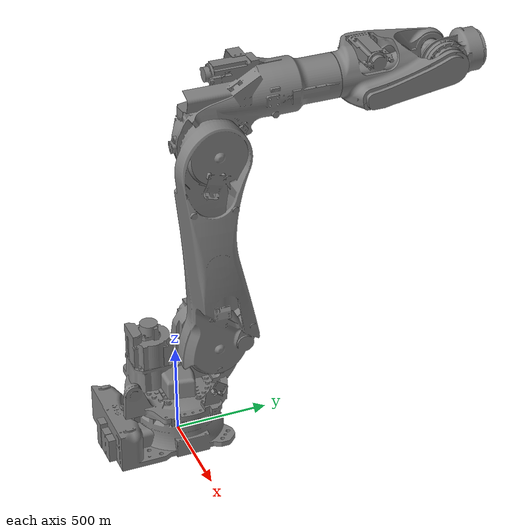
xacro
<?xml version="1.0" ?>
<robot name="bx165l" xmlns:xacro="http://ros.org/wiki/xacro">
  <xacro:include filename="$(find kawasaki)/urdf/bx165l_macro.xacro" />
  <xacro:bx165l prefix="" />

  <link name="world" />
  <joint name="joint_w" type="fixed">
    <parent link="world" />
	<child link="base_link" />
    <origin xyz="0 0 0" rpy="0 0 0" />
  </joint>

</robot>

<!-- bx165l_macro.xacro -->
<robot xmlns:xacro="http://ros.org/wiki/xacro">
  <xacro:macro name="bx165l" params="prefix">

    <!-- Properties -->
    <material name="blue">
      <color rgba="0.5 0.5 0.5 1" />
    </material>
    <material name="white">
      <color rgba="0.95294 0.95294 0.95294 1" />
    </material>

    <!-- link list -->
    <link name="${prefix}base_link">
      <visual>
        <geometry>
          <mesh filename="package://kawasaki/meshes/bx165l/base_link.stl" scale="1000 1000 1000" />
        </geometry>
        <material name="blue"/>
      </visual>
      <collision>
        <geometry>
          <mesh filename="package://kawasaki/meshes/bx165l/base_link.stl" scale="1000 1000 1000" />
        </geometry>
      </collision>
    </link>
    <link name="${prefix}link_1_s">
      <visual>
        <geometry>
          <mesh filename="package://kawasaki/meshes/bx165l/link_1_s.stl" scale="1000 1000 1000" />
        </geometry>
        <material name="blue"/>
      </visual>
      <collision>
        <geometry>
          <mesh filename="package://kawasaki/meshes/bx165l/link_1_s.stl" scale="1000 1000 1000" />
        </geometry>
      </collision>
    </link>
    <link name="${prefix}link_2_l">
      <visual>
        <geometry>
          <mesh filename="package://kawasaki/meshes/bx165l/link_2_l.stl" scale="1000 1000 1000" />
        </geometry>
        <material name="blue"/>
      </visual>
      <collision>
        <geometry>
          <mesh filename="package://kawasaki/meshes/bx165l/link_2_l.stl" scale="1000 1000 1000" />
        </geometry>
      </collision>
    </link>
    <link name="${prefix}link_3_u">
      <visual>
        <geometry>
          <mesh filename="package://kawasaki/meshes/bx165l/link_3_u.stl" scale="1000 1000 1000" />
        </geometry>
        <material name="blue"/>
      </visual>
      <collision>
        <geometry>
          <mesh filename="package://kawasaki/meshes/bx165l/link_3_u.stl" scale="1000 1000 1000" />
        </geometry>
      </collision>
    </link>
    <link name="${prefix}link_4_r">
      <visual>
        <geometry>
          <mesh filename="package://kawasaki/meshes/bx165l/link_4_r.stl" scale="1000 1000 1000" />
        </geometry>
        <material name="blue"/>
      </visual>
      <collision>
        <geometry>
          <mesh filename="package://kawasaki/meshes/bx165l/link_4_r.stl" scale="1000 1000 1000" />
        </geometry>
      </collision>
    </link>
    <link name="${prefix}link_5_b">
      <visual>
        <geometry>
          <mesh filename="package://kawasaki/meshes/bx165l/link_5_b.stl" scale="1000 1000 1000" />
        </geometry>
        <material name="blue"/>
      </visual>
      <collision>
        <geometry>
          <mesh filename="package://kawasaki/meshes/bx165l/link_5_b.stl" scale="1000 1000 1000" />
        </geometry>
      </collision>
    </link>
    <link name="${prefix}link_6_t">
      <visual>
        <geometry>
          <mesh filename="package://kawasaki/meshes/bx165l/link_6_t.stl" scale="1000 1000 1000" />
        </geometry>
        <material name="blue"/>
      </visual>
      <collision>
        <geometry>
          <mesh filename="package://kawasaki/meshes/bx165l/link_6_t.stl" scale="1000 1000 1000" />
       </geometry>
      </collision>
    </link>
    <link name="${prefix}tool0"/>
    <!-- end of link list -->

    <!-- joint list -->
    <joint name="${prefix}joint_1_s" type="revolute">
      <parent link="${prefix}base_link"/>
      <child link="${prefix}link_1_s"/>
      <origin xyz="0 0 530" rpy="0 0 0" />
      <axis xyz="0 0 -1" />
      <limit lower="${radians(-160)}" upper="${radians(160)}" effort="1000.0" velocity="${radians(120)}"/>
    </joint>
    <joint name="${prefix}joint_2_l" type="revolute">
      <parent link="${prefix}link_1_s"/>
      <child link="${prefix}link_2_l"/>
      <origin xyz="0 200 0" rpy="0 0 0" />
      <axis xyz="-1 0 0" />
      <limit lower="${radians(-60)}" upper="${radians(76)}" effort="1000.0" velocity="${radians(110)}"/>
    </joint>
    <joint name="${prefix}joint_3_u" type="revolute">
      <parent link="${prefix}link_2_l"/>
      <child link="${prefix}link_3_u"/>
      <origin xyz="0 0 1160" rpy="0 0 0" />
      <axis xyz="1 0 0" />
      <limit lower="${radians(-75)}" upper="${radians(90)}" effort="1000.0" velocity="${radians(130)}"/>
    </joint>
    <joint name="${prefix}joint_4_r" type="revolute">
      <parent link="${prefix}link_3_u"/>
      <child link="${prefix}link_4_r"/>
      <origin xyz="0 1250 230" rpy="0 0 0" />
      <axis xyz="0 1 0" />
      <limit lower="${radians(-210)}" upper="${radians(210)}" effort="1000.0" velocity="${radians(170)}"/>
    </joint>
    <joint name="${prefix}joint_5_b" type="revolute">
      <parent link="${prefix}link_4_r"/>
      <child link="${prefix}link_5_b"/>
      <origin xyz="0 0 0" rpy="0 0 0" />
      <axis xyz="1 0 0" />
      <limit lower="${radians(-125)}" upper="${radians(125)}" effort="1000.0" velocity="${radians(170)}"/>
    </joint>
    <joint name="${prefix}joint_6_t" type="revolute">
      <parent link="${prefix}link_5_b"/>
      <child link="${prefix}link_6_t"/>
      <origin xyz="0 225 0" rpy="0 0 0" />
      <axis xyz="0 1 0" />
      <limit lower="${radians(-210)}" upper="${radians(210)}" effort="1000.0" velocity="${radians(280)}"/>
    </joint>
    <joint name="${prefix}joint_6_t-tool0" type="fixed">
      <origin xyz="0 0 0" rpy="${radians(-90)} 0 0"/>
      <parent link="${prefix}link_6_t"/>
      <child link="${prefix}tool0"/>
    </joint>
    <!-- end of joint list -->

    <!-- ROS base_link to Robot Manufacturer World Coordinates transform -->
    <link name="${prefix}base" />
    <joint name="${prefix}base_link-base" type="fixed">
      <origin xyz="0 0 0" rpy="0 0 0"/>
      <parent link="${prefix}base_link"/>
      <child link="${prefix}base"/>
    </joint>
  </xacro:macro>
</robot>
